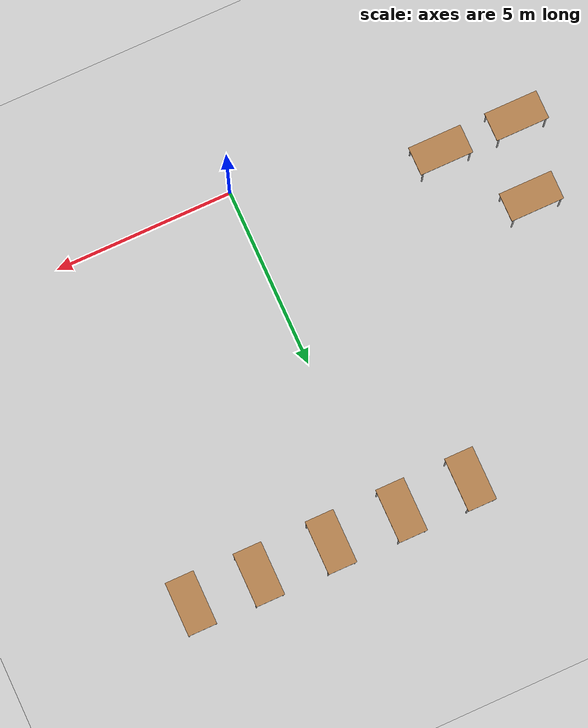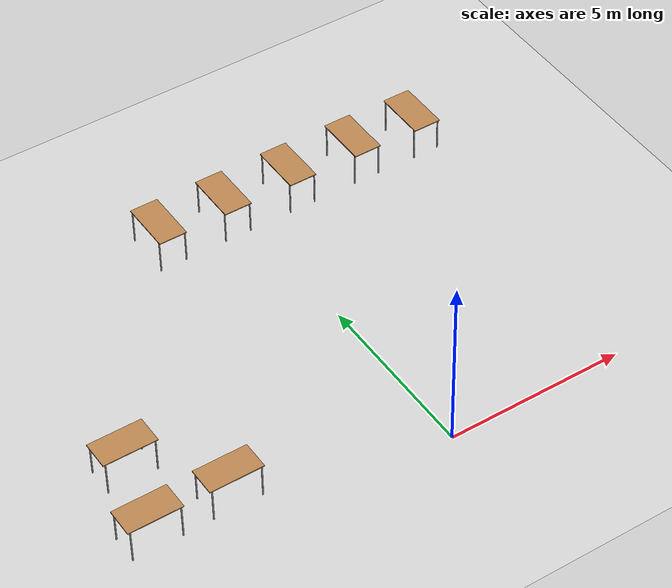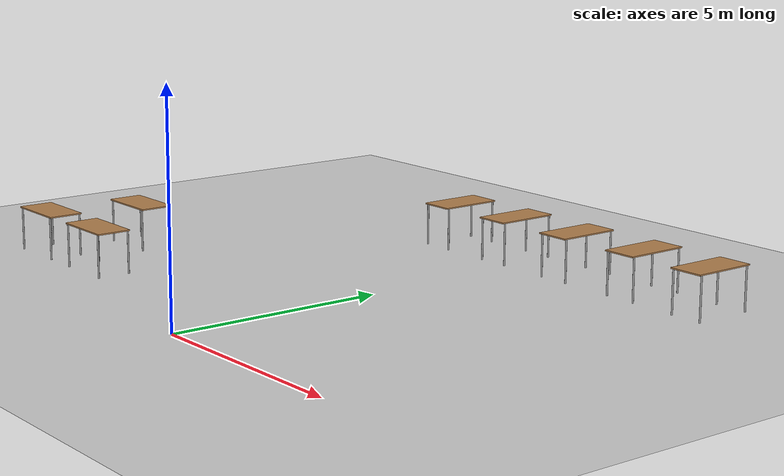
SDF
<sdf version="1.6">
 <world name="default">
  <model name="ground_plane">
   <static>1</static>
   <link name="link">
    <collision name="collision">
     <geometry><plane><normal>0 0 1</normal><size>100 100</size></plane></geometry>
     <surface><friction><ode><mu>100</mu><mu2>50</mu2></ode></friction></surface>
    </collision>
    <visual name="visual">
     <cast_shadows>0</cast_shadows>
     <geometry><plane><normal>0 0 1</normal><size>100 100</size></plane></geometry>
     <material>
      <script><uri>file://media/materials/scripts/gazebo.material</uri><name>Gazebo/Grey</name></script>
     </material>
    </visual>
   </link>
  </model>
  <model name="table_clone">
   <static>1</static>
   <link name="link">
    <collision name="surface">
     <pose>0 0 1 0 -0 0</pose>
     <geometry><box><size>1.5 0.8 0.03</size></box></geometry>
     <surface><friction><ode><mu>0.6</mu><mu2>0.6</mu2></ode></friction></surface>
    </collision>
    <visual name="visual1">
     <pose>0 0 1 0 -0 0</pose>
     <geometry><box><size>1.5 0.8 0.03</size></box></geometry>
     <material>
      <script><uri>file://media/materials/scripts/gazebo.material</uri><name>Gazebo/Wood</name></script>
     </material>
    </visual>
    <collision name="front_left_leg">
     <pose>0.68 0.38 0.5 0 -0 0</pose>
     <geometry><cylinder><radius>0.02</radius><length>1</length></cylinder></geometry>
    </collision>
    <visual name="front_left_leg">
     <pose>0.68 0.38 0.5 0 -0 0</pose>
     <geometry><cylinder><radius>0.02</radius><length>1</length></cylinder></geometry>
     <material>
      <script><uri>file://media/materials/scripts/gazebo.material</uri><name>Gazebo/Grey</name></script>
     </material>
    </visual>
    <collision name="front_right_leg">
     <pose>0.68 -0.38 0.5 0 -0 0</pose>
     <geometry><cylinder><radius>0.02</radius><length>1</length></cylinder></geometry>
    </collision>
    <visual name="front_right_leg">
     <pose>0.68 -0.38 0.5 0 -0 0</pose>
     <geometry><cylinder><radius>0.02</radius><length>1</length></cylinder></geometry>
     <material>
      <script><uri>file://media/materials/scripts/gazebo.material</uri><name>Gazebo/Grey</name></script>
     </material>
    </visual>
    <collision name="back_right_leg">
     <pose>-0.68 -0.38 0.5 0 -0 0</pose>
     <geometry><cylinder><radius>0.02</radius><length>1</length></cylinder></geometry>
    </collision>
    <visual name="back_right_leg">
     <pose>-0.68 -0.38 0.5 0 -0 0</pose>
     <geometry><cylinder><radius>0.02</radius><length>1</length></cylinder></geometry>
     <material>
      <script><uri>file://media/materials/scripts/gazebo.material</uri><name>Gazebo/Grey</name></script>
     </material>
    </visual>
    <collision name="back_left_leg">
     <pose>-0.68 0.38 0.5 0 -0 0</pose>
     <geometry><cylinder><radius>0.02</radius><length>1</length></cylinder></geometry>
    </collision>
    <visual name="back_left_leg">
     <pose>-0.68 0.38 0.5 0 -0 0</pose>
     <geometry><cylinder><radius>0.02</radius><length>1</length></cylinder></geometry>
     <material>
      <script><uri>file://media/materials/scripts/gazebo.material</uri><name>Gazebo/Grey</name></script>
     </material>
    </visual>
   </link>
   <pose>5.36982 9.5628 0 0 0 -1.57</pose>
  </model>
  <model name="table_clone_0">
   <static>1</static>
   <link name="link">
    <collision name="surface">
     <pose>0 0 1 0 -0 0</pose>
     <geometry><box><size>1.5 0.8 0.03</size></box></geometry>
     <surface><friction><ode><mu>0.6</mu><mu2>0.6</mu2></ode></friction></surface>
    </collision>
    <visual name="visual1">
     <pose>0 0 1 0 -0 0</pose>
     <geometry><box><size>1.5 0.8 0.03</size></box></geometry>
     <material>
      <script><uri>file://media/materials/scripts/gazebo.material</uri><name>Gazebo/Wood</name></script>
     </material>
    </visual>
    <collision name="front_left_leg">
     <pose>0.68 0.38 0.5 0 -0 0</pose>
     <geometry><cylinder><radius>0.02</radius><length>1</length></cylinder></geometry>
    </collision>
    <visual name="front_left_leg">
     <pose>0.68 0.38 0.5 0 -0 0</pose>
     <geometry><cylinder><radius>0.02</radius><length>1</length></cylinder></geometry>
     <material>
      <script><uri>file://media/materials/scripts/gazebo.material</uri><name>Gazebo/Grey</name></script>
     </material>
    </visual>
    <collision name="front_right_leg">
     <pose>0.68 -0.38 0.5 0 -0 0</pose>
     <geometry><cylinder><radius>0.02</radius><length>1</length></cylinder></geometry>
    </collision>
    <visual name="front_right_leg">
     <pose>0.68 -0.38 0.5 0 -0 0</pose>
     <geometry><cylinder><radius>0.02</radius><length>1</length></cylinder></geometry>
     <material>
      <script><uri>file://media/materials/scripts/gazebo.material</uri><name>Gazebo/Grey</name></script>
     </material>
    </visual>
    <collision name="back_right_leg">
     <pose>-0.68 -0.38 0.5 0 -0 0</pose>
     <geometry><cylinder><radius>0.02</radius><length>1</length></cylinder></geometry>
    </collision>
    <visual name="back_right_leg">
     <pose>-0.68 -0.38 0.5 0 -0 0</pose>
     <geometry><cylinder><radius>0.02</radius><length>1</length></cylinder></geometry>
     <material>
      <script><uri>file://media/materials/scripts/gazebo.material</uri><name>Gazebo/Grey</name></script>
     </material>
    </visual>
    <collision name="back_left_leg">
     <pose>-0.68 0.38 0.5 0 -0 0</pose>
     <geometry><cylinder><radius>0.02</radius><length>1</length></cylinder></geometry>
    </collision>
    <visual name="back_left_leg">
     <pose>-0.68 0.38 0.5 0 -0 0</pose>
     <geometry><cylinder><radius>0.02</radius><length>1</length></cylinder></geometry>
     <material>
      <script><uri>file://media/materials/scripts/gazebo.material</uri><name>Gazebo/Grey</name></script>
     </material>
    </visual>
   </link>
   <pose>3.47417 9.59504 0 0 0 -1.57</pose>
  </model>
  <model name="table_clone_1">
   <static>1</static>
   <link name="link">
    <collision name="surface">
     <pose>0 0 1 0 -0 0</pose>
     <geometry><box><size>1.5 0.8 0.03</size></box></geometry>
     <surface><friction><ode><mu>0.6</mu><mu2>0.6</mu2></ode></friction></surface>
    </collision>
    <visual name="visual1">
     <pose>0 0 1 0 -0 0</pose>
     <geometry><box><size>1.5 0.8 0.03</size></box></geometry>
     <material>
      <script><uri>file://media/materials/scripts/gazebo.material</uri><name>Gazebo/Wood</name></script>
     </material>
    </visual>
    <collision name="front_left_leg">
     <pose>0.68 0.38 0.5 0 -0 0</pose>
     <geometry><cylinder><radius>0.02</radius><length>1</length></cylinder></geometry>
    </collision>
    <visual name="front_left_leg">
     <pose>0.68 0.38 0.5 0 -0 0</pose>
     <geometry><cylinder><radius>0.02</radius><length>1</length></cylinder></geometry>
     <material>
      <script><uri>file://media/materials/scripts/gazebo.material</uri><name>Gazebo/Grey</name></script>
     </material>
    </visual>
    <collision name="front_right_leg">
     <pose>0.68 -0.38 0.5 0 -0 0</pose>
     <geometry><cylinder><radius>0.02</radius><length>1</length></cylinder></geometry>
    </collision>
    <visual name="front_right_leg">
     <pose>0.68 -0.38 0.5 0 -0 0</pose>
     <geometry><cylinder><radius>0.02</radius><length>1</length></cylinder></geometry>
     <material>
      <script><uri>file://media/materials/scripts/gazebo.material</uri><name>Gazebo/Grey</name></script>
     </material>
    </visual>
    <collision name="back_right_leg">
     <pose>-0.68 -0.38 0.5 0 -0 0</pose>
     <geometry><cylinder><radius>0.02</radius><length>1</length></cylinder></geometry>
    </collision>
    <visual name="back_right_leg">
     <pose>-0.68 -0.38 0.5 0 -0 0</pose>
     <geometry><cylinder><radius>0.02</radius><length>1</length></cylinder></geometry>
     <material>
      <script><uri>file://media/materials/scripts/gazebo.material</uri><name>Gazebo/Grey</name></script>
     </material>
    </visual>
    <collision name="back_left_leg">
     <pose>-0.68 0.38 0.5 0 -0 0</pose>
     <geometry><cylinder><radius>0.02</radius><length>1</length></cylinder></geometry>
    </collision>
    <visual name="back_left_leg">
     <pose>-0.68 0.38 0.5 0 -0 0</pose>
     <geometry><cylinder><radius>0.02</radius><length>1</length></cylinder></geometry>
     <material>
      <script><uri>file://media/materials/scripts/gazebo.material</uri><name>Gazebo/Grey</name></script>
     </material>
    </visual>
   </link>
   <pose>1.43565 9.59938 0 0 0 -1.57</pose>
  </model>
  <model name="table_clone_2">
   <static>1</static>
   <link name="link">
    <collision name="surface">
     <pose>0 0 1 0 -0 0</pose>
     <geometry><box><size>1.5 0.8 0.03</size></box></geometry>
     <surface><friction><ode><mu>0.6</mu><mu2>0.6</mu2></ode></friction></surface>
    </collision>
    <visual name="visual1">
     <pose>0 0 1 0 -0 0</pose>
     <geometry><box><size>1.5 0.8 0.03</size></box></geometry>
     <material>
      <script><uri>file://media/materials/scripts/gazebo.material</uri><name>Gazebo/Wood</name></script>
     </material>
    </visual>
    <collision name="front_left_leg">
     <pose>0.68 0.38 0.5 0 -0 0</pose>
     <geometry><cylinder><radius>0.02</radius><length>1</length></cylinder></geometry>
    </collision>
    <visual name="front_left_leg">
     <pose>0.68 0.38 0.5 0 -0 0</pose>
     <geometry><cylinder><radius>0.02</radius><length>1</length></cylinder></geometry>
     <material>
      <script><uri>file://media/materials/scripts/gazebo.material</uri><name>Gazebo/Grey</name></script>
     </material>
    </visual>
    <collision name="front_right_leg">
     <pose>0.68 -0.38 0.5 0 -0 0</pose>
     <geometry><cylinder><radius>0.02</radius><length>1</length></cylinder></geometry>
    </collision>
    <visual name="front_right_leg">
     <pose>0.68 -0.38 0.5 0 -0 0</pose>
     <geometry><cylinder><radius>0.02</radius><length>1</length></cylinder></geometry>
     <material>
      <script><uri>file://media/materials/scripts/gazebo.material</uri><name>Gazebo/Grey</name></script>
     </material>
    </visual>
    <collision name="back_right_leg">
     <pose>-0.68 -0.38 0.5 0 -0 0</pose>
     <geometry><cylinder><radius>0.02</radius><length>1</length></cylinder></geometry>
    </collision>
    <visual name="back_right_leg">
     <pose>-0.68 -0.38 0.5 0 -0 0</pose>
     <geometry><cylinder><radius>0.02</radius><length>1</length></cylinder></geometry>
     <material>
      <script><uri>file://media/materials/scripts/gazebo.material</uri><name>Gazebo/Grey</name></script>
     </material>
    </visual>
    <collision name="back_left_leg">
     <pose>-0.68 0.38 0.5 0 -0 0</pose>
     <geometry><cylinder><radius>0.02</radius><length>1</length></cylinder></geometry>
    </collision>
    <visual name="back_left_leg">
     <pose>-0.68 0.38 0.5 0 -0 0</pose>
     <geometry><cylinder><radius>0.02</radius><length>1</length></cylinder></geometry>
     <material>
      <script><uri>file://media/materials/scripts/gazebo.material</uri><name>Gazebo/Grey</name></script>
     </material>
    </visual>
   </link>
   <pose>-0.563458 9.59911 0 0 0 -1.57</pose>
  </model>
  <model name="table_clone_3">
   <static>1</static>
   <link name="link">
    <collision name="surface">
     <pose>0 0 1 0 -0 0</pose>
     <geometry><box><size>1.5 0.8 0.03</size></box></geometry>
     <surface><friction><ode><mu>0.6</mu><mu2>0.6</mu2></ode></friction></surface>
    </collision>
    <visual name="visual1">
     <pose>0 0 1 0 -0 0</pose>
     <geometry><box><size>1.5 0.8 0.03</size></box></geometry>
     <material>
      <script><uri>file://media/materials/scripts/gazebo.material</uri><name>Gazebo/Wood</name></script>
     </material>
    </visual>
    <collision name="front_left_leg">
     <pose>0.68 0.38 0.5 0 -0 0</pose>
     <geometry><cylinder><radius>0.02</radius><length>1</length></cylinder></geometry>
    </collision>
    <visual name="front_left_leg">
     <pose>0.68 0.38 0.5 0 -0 0</pose>
     <geometry><cylinder><radius>0.02</radius><length>1</length></cylinder></geometry>
     <material>
      <script><uri>file://media/materials/scripts/gazebo.material</uri><name>Gazebo/Grey</name></script>
     </material>
    </visual>
    <collision name="front_right_leg">
     <pose>0.68 -0.38 0.5 0 -0 0</pose>
     <geometry><cylinder><radius>0.02</radius><length>1</length></cylinder></geometry>
    </collision>
    <visual name="front_right_leg">
     <pose>0.68 -0.38 0.5 0 -0 0</pose>
     <geometry><cylinder><radius>0.02</radius><length>1</length></cylinder></geometry>
     <material>
      <script><uri>file://media/materials/scripts/gazebo.material</uri><name>Gazebo/Grey</name></script>
     </material>
    </visual>
    <collision name="back_right_leg">
     <pose>-0.68 -0.38 0.5 0 -0 0</pose>
     <geometry><cylinder><radius>0.02</radius><length>1</length></cylinder></geometry>
    </collision>
    <visual name="back_right_leg">
     <pose>-0.68 -0.38 0.5 0 -0 0</pose>
     <geometry><cylinder><radius>0.02</radius><length>1</length></cylinder></geometry>
     <material>
      <script><uri>file://media/materials/scripts/gazebo.material</uri><name>Gazebo/Grey</name></script>
     </material>
    </visual>
    <collision name="back_left_leg">
     <pose>-0.68 0.38 0.5 0 -0 0</pose>
     <geometry><cylinder><radius>0.02</radius><length>1</length></cylinder></geometry>
    </collision>
    <visual name="back_left_leg">
     <pose>-0.68 0.38 0.5 0 -0 0</pose>
     <geometry><cylinder><radius>0.02</radius><length>1</length></cylinder></geometry>
     <material>
      <script><uri>file://media/materials/scripts/gazebo.material</uri><name>Gazebo/Grey</name></script>
     </material>
    </visual>
   </link>
   <pose>-2.5236 9.5957 0 0 0 -1.57</pose>
  </model>
  <model name="table">
   <static>1</static>
   <link name="link">
    <collision name="surface">
     <pose>0 0 1 0 -0 0</pose>
     <geometry><box><size>1.5 0.8 0.03</size></box></geometry>
     <surface><friction><ode><mu>0.6</mu><mu2>0.6</mu2></ode></friction></surface>
    </collision>
    <visual name="visual1">
     <pose>0 0 1 0 -0 0</pose>
     <geometry><box><size>1.5 0.8 0.03</size></box></geometry>
     <material>
      <script><uri>file://media/materials/scripts/gazebo.material</uri><name>Gazebo/Wood</name></script>
     </material>
    </visual>
    <collision name="front_left_leg">
     <pose>0.68 0.38 0.5 0 -0 0</pose>
     <geometry><cylinder><radius>0.02</radius><length>1</length></cylinder></geometry>
    </collision>
    <visual name="front_left_leg">
     <pose>0.68 0.38 0.5 0 -0 0</pose>
     <geometry><cylinder><radius>0.02</radius><length>1</length></cylinder></geometry>
     <material>
      <script><uri>file://media/materials/scripts/gazebo.material</uri><name>Gazebo/Grey</name></script>
     </material>
    </visual>
    <collision name="front_right_leg">
     <pose>0.68 -0.38 0.5 0 -0 0</pose>
     <geometry><cylinder><radius>0.02</radius><length>1</length></cylinder></geometry>
    </collision>
    <visual name="front_right_leg">
     <pose>0.68 -0.38 0.5 0 -0 0</pose>
     <geometry><cylinder><radius>0.02</radius><length>1</length></cylinder></geometry>
     <material>
      <script><uri>file://media/materials/scripts/gazebo.material</uri><name>Gazebo/Grey</name></script>
     </material>
    </visual>
    <collision name="back_right_leg">
     <pose>-0.68 -0.38 0.5 0 -0 0</pose>
     <geometry><cylinder><radius>0.02</radius><length>1</length></cylinder></geometry>
    </collision>
    <visual name="back_right_leg">
     <pose>-0.68 -0.38 0.5 0 -0 0</pose>
     <geometry><cylinder><radius>0.02</radius><length>1</length></cylinder></geometry>
     <material>
      <script><uri>file://media/materials/scripts/gazebo.material</uri><name>Gazebo/Grey</name></script>
     </material>
    </visual>
    <collision name="back_left_leg">
     <pose>-0.68 0.38 0.5 0 -0 0</pose>
     <geometry><cylinder><radius>0.02</radius><length>1</length></cylinder></geometry>
    </collision>
    <visual name="back_left_leg">
     <pose>-0.68 0.38 0.5 0 -0 0</pose>
     <geometry><cylinder><radius>0.02</radius><length>1</length></cylinder></geometry>
     <material>
      <script><uri>file://media/materials/scripts/gazebo.material</uri><name>Gazebo/Grey</name></script>
     </material>
    </visual>
   </link>
   <pose>-7.63732 1.38708 0 0 -0 0</pose>
  </model>
  <model name="table_clone_4">
   <static>1</static>
   <link name="link">
    <collision name="surface">
     <pose>0 0 1 0 -0 0</pose>
     <geometry><box><size>1.5 0.8 0.03</size></box></geometry>
     <surface><friction><ode><mu>0.6</mu><mu2>0.6</mu2></ode></friction></surface>
    </collision>
    <visual name="visual1">
     <pose>0 0 1 0 -0 0</pose>
     <geometry><box><size>1.5 0.8 0.03</size></box></geometry>
     <material>
      <script><uri>file://media/materials/scripts/gazebo.material</uri><name>Gazebo/Wood</name></script>
     </material>
    </visual>
    <collision name="front_left_leg">
     <pose>0.68 0.38 0.5 0 -0 0</pose>
     <geometry><cylinder><radius>0.02</radius><length>1</length></cylinder></geometry>
    </collision>
    <visual name="front_left_leg">
     <pose>0.68 0.38 0.5 0 -0 0</pose>
     <geometry><cylinder><radius>0.02</radius><length>1</length></cylinder></geometry>
     <material>
      <script><uri>file://media/materials/scripts/gazebo.material</uri><name>Gazebo/Grey</name></script>
     </material>
    </visual>
    <collision name="front_right_leg">
     <pose>0.68 -0.38 0.5 0 -0 0</pose>
     <geometry><cylinder><radius>0.02</radius><length>1</length></cylinder></geometry>
    </collision>
    <visual name="front_right_leg">
     <pose>0.68 -0.38 0.5 0 -0 0</pose>
     <geometry><cylinder><radius>0.02</radius><length>1</length></cylinder></geometry>
     <material>
      <script><uri>file://media/materials/scripts/gazebo.material</uri><name>Gazebo/Grey</name></script>
     </material>
    </visual>
    <collision name="back_right_leg">
     <pose>-0.68 -0.38 0.5 0 -0 0</pose>
     <geometry><cylinder><radius>0.02</radius><length>1</length></cylinder></geometry>
    </collision>
    <visual name="back_right_leg">
     <pose>-0.68 -0.38 0.5 0 -0 0</pose>
     <geometry><cylinder><radius>0.02</radius><length>1</length></cylinder></geometry>
     <material>
      <script><uri>file://media/materials/scripts/gazebo.material</uri><name>Gazebo/Grey</name></script>
     </material>
    </visual>
    <collision name="back_left_leg">
     <pose>-0.68 0.38 0.5 0 -0 0</pose>
     <geometry><cylinder><radius>0.02</radius><length>1</length></cylinder></geometry>
    </collision>
    <visual name="back_left_leg">
     <pose>-0.68 0.38 0.5 0 -0 0</pose>
     <geometry><cylinder><radius>0.02</radius><length>1</length></cylinder></geometry>
     <material>
      <script><uri>file://media/materials/scripts/gazebo.material</uri><name>Gazebo/Grey</name></script>
     </material>
    </visual>
   </link>
   <pose>-5.43848 1.40059 0 0 -0 0</pose>
  </model>
  <model name="table_clone_11">
   <static>1</static>
   <link name="link">
    <collision name="surface">
     <pose>0 0 1 0 -0 0</pose>
     <geometry><box><size>1.5 0.8 0.03</size></box></geometry>
     <surface><friction><ode><mu>0.6</mu><mu2>0.6</mu2></ode></friction></surface>
    </collision>
    <visual name="visual1">
     <pose>0 0 1 0 -0 0</pose>
     <geometry><box><size>1.5 0.8 0.03</size></box></geometry>
     <material>
      <script><uri>file://media/materials/scripts/gazebo.material</uri><name>Gazebo/Wood</name></script>
     </material>
    </visual>
    <collision name="front_left_leg">
     <pose>0.68 0.38 0.5 0 -0 0</pose>
     <geometry><cylinder><radius>0.02</radius><length>1</length></cylinder></geometry>
    </collision>
    <visual name="front_left_leg">
     <pose>0.68 0.38 0.5 0 -0 0</pose>
     <geometry><cylinder><radius>0.02</radius><length>1</length></cylinder></geometry>
     <material>
      <script><uri>file://media/materials/scripts/gazebo.material</uri><name>Gazebo/Grey</name></script>
     </material>
    </visual>
    <collision name="front_right_leg">
     <pose>0.68 -0.38 0.5 0 -0 0</pose>
     <geometry><cylinder><radius>0.02</radius><length>1</length></cylinder></geometry>
    </collision>
    <visual name="front_right_leg">
     <pose>0.68 -0.38 0.5 0 -0 0</pose>
     <geometry><cylinder><radius>0.02</radius><length>1</length></cylinder></geometry>
     <material>
      <script><uri>file://media/materials/scripts/gazebo.material</uri><name>Gazebo/Grey</name></script>
     </material>
    </visual>
    <collision name="back_right_leg">
     <pose>-0.68 -0.38 0.5 0 -0 0</pose>
     <geometry><cylinder><radius>0.02</radius><length>1</length></cylinder></geometry>
    </collision>
    <visual name="back_right_leg">
     <pose>-0.68 -0.38 0.5 0 -0 0</pose>
     <geometry><cylinder><radius>0.02</radius><length>1</length></cylinder></geometry>
     <material>
      <script><uri>file://media/materials/scripts/gazebo.material</uri><name>Gazebo/Grey</name></script>
     </material>
    </visual>
    <collision name="back_left_leg">
     <pose>-0.68 0.38 0.5 0 -0 0</pose>
     <geometry><cylinder><radius>0.02</radius><length>1</length></cylinder></geometry>
    </collision>
    <visual name="back_left_leg">
     <pose>-0.68 0.38 0.5 0 -0 0</pose>
     <geometry><cylinder><radius>0.02</radius><length>1</length></cylinder></geometry>
     <material>
      <script><uri>file://media/materials/scripts/gazebo.material</uri><name>Gazebo/Grey</name></script>
     </material>
    </visual>
   </link>
   <pose>-7.08899 3.49444 0 0 -0 0</pose>
  </model>
 </world>
</sdf>
